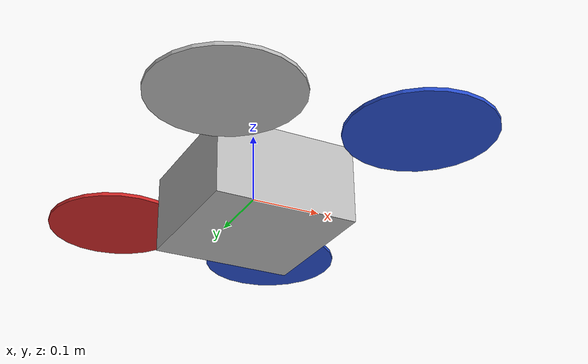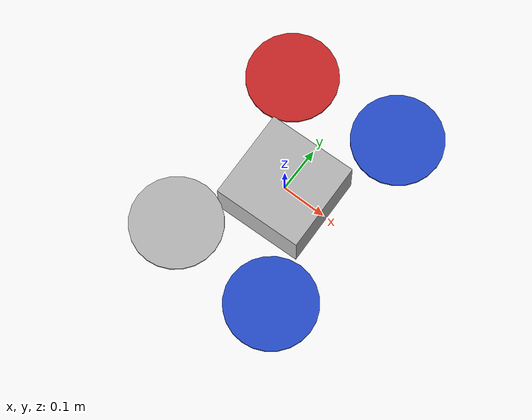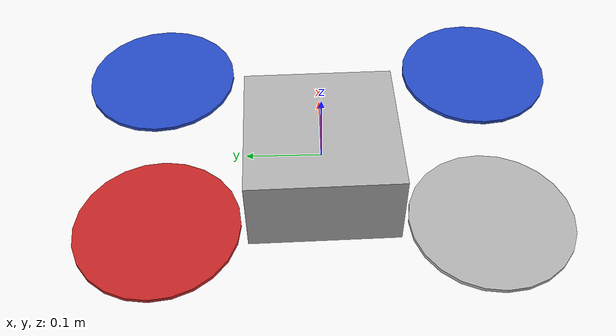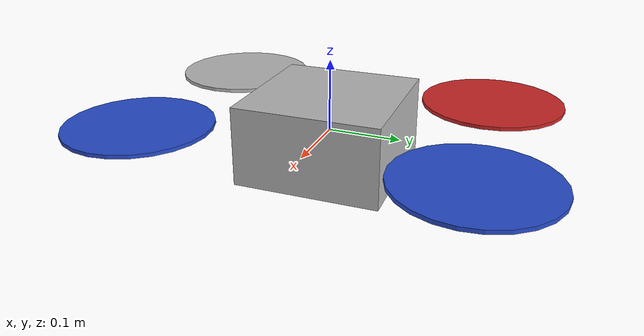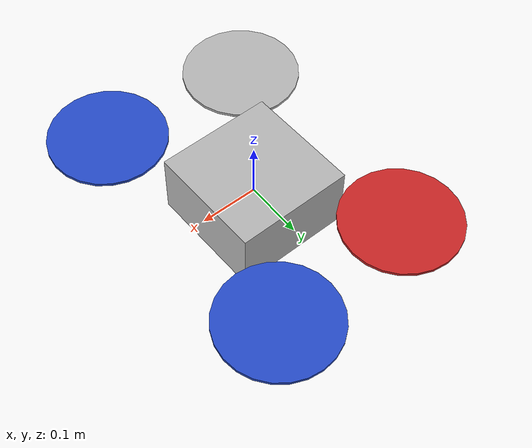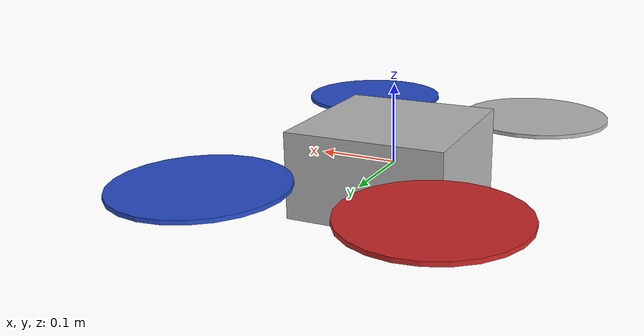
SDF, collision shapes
<?xml version="1.0" ?>
<sdf version='1.6'>
<model name="x3_uav">
    <link name='X3/base_link'>
      <pose>0 0 0 0 0 -3.12</pose>
      <inertial>
        <pose>0 0 0 0 0 0</pose>
        <mass>0.5</mass>
        <inertia>
          <ixx>0.0347563</ixx>
          <ixy>0</ixy >
          <ixz>0</ixz>
          <iyy>0.07</iyy>
          <iyz>0</iyz>
          <izz>0.0977</izz>
        </inertia>
      </inertial>
      <collision name='X3/base_link_inertia_collision'>
        <pose>0 0 0 0 -0 0</pose>
        <geometry>
          <box>
            <size>0.2 0.2 0.11</size>
          </box>
        </geometry>
      </collision>
    <sensor name="imu" type="imu">
      <always_on>1</always_on>
      <update_rate>100</update_rate>
      <visualize>true</visualize>
      <topic>imu</topic>
      <imu>
        <orientation_reference_frame>
          <localization>CUSTOM</localization>
          <custom_rpy parent_frame=''>0 0 0</custom_rpy>
        </orientation_reference_frame>
      </imu>
      <enable_metrics>true</enable_metrics>
    </sensor>
      <visual name='X3/base_link_inertia_visual'>
        <pose frame=''>0 0 0 0 -0 0</pose>
        <geometry>
          <mesh>
            <scale>1 1 1</scale>
            <uri>x3/meshes/x3.dae</uri>
          </mesh>
        </geometry>
      </visual>
      <sensor name="rgbd_camera" type="rgbd_camera">
        <pose>0 0 0 0 0 -3.12</pose>
        <update_rate>100</update_rate>
        <visualize>true</visualize>
        <always_on>1</always_on>
        <topic>Camera0</topic>
        <camera>
          <image>
            <width>600</width>
            <height>600</height>
            <format>L_INT8</format>
          </image>
          <clip>
            <near>0.1</near>
            <far>10</far>
          </clip>
          <scale_to_hfov>true</scale_to_hfov>
        </camera>
      </sensor>
    </link>
    <link name='X3/rotor_0'>
      <pose frame=''>0.13 -0.22 0.023 0 -0 0</pose>
      <inertial>
        <pose frame=''>0 0 0 0 -0 0</pose>
        <mass>0.005</mass>
        <inertia>
          <ixx>0.0001</ixx>
          <ixy>0</ixy>
          <ixz>0</ixz>
          <iyy>0.0001</iyy>
          <iyz>0</iyz>
          <izz>0.0001</izz>
        </inertia>
      </inertial>
      <collision name='X3/rotor_0_collision'>
        <pose frame=''>0 0 0 0 -0 0</pose>
        <geometry>
          <cylinder>
            <length>0.005</length>
            <radius>0.1</radius>
          </cylinder>
        </geometry>
      </collision>
      <visual name='X3/rotor_0_visual'>
        <pose frame=''>0 0 0 0 -0 0</pose>
        <geometry>
          <mesh>
            <scale>0.1 0.1 0.1</scale>
            <uri>x3/meshes/propeller_ccw.dae</uri>
          </mesh>
        </geometry>
        <material>
          <script>
            <name>Gazebo/Blue</name>
            <uri>file://media/materials/scripts/gazebo.material</uri>
          </script>
        </material>
      </visual>
    </link>
    <joint name='X3/rotor_0_joint' type='revolute'>
      <child>X3/rotor_0</child>
      <parent>X3/base_link</parent>
      <axis>
        <xyz>0 0 1</xyz>
        <limit>
          <lower>-1e+16</lower>
          <upper>1e+16</upper>
        </limit>
      </axis>
    </joint>
    <link name='X3/rotor_1'>
      <pose frame=''>-0.13 0.2 0.023 0 -0 0</pose>
      <inertial>
        <pose frame=''>0 0 0 0 -0 0</pose>
        <mass>0.005</mass>
        <inertia>
          <ixx>0.0001</ixx>
          <ixy>0</ixy>
          <ixz>0</ixz>
          <iyy>0.0001</iyy>
          <iyz>0</iyz>
          <izz>0.0001</izz>
        </inertia>
      </inertial>
      <collision name='X3/rotor_1_collision'>
        <pose frame=''>0 0 0 0 -0 0</pose>
        <geometry>
          <cylinder>
            <length>0.005</length>
            <radius>0.1</radius>
          </cylinder>
        </geometry>

      </collision>
      <visual name='X3/rotor_1_visual'>
        <pose frame=''>0 0 0 0 -0 0</pose>
        <geometry>
          <mesh>
            <scale>0.1 0.1 0.1</scale>
            <uri>x3/meshes/propeller_ccw.dae</uri>
          </mesh>
        </geometry>
        <material>
          <script>
            <name>Gazebo/Red</name>
            <uri>file://media/materials/scripts/gazebo.material</uri>
          </script>
        </material>
      </visual>
    </link>
    <joint name='X3/rotor_1_joint' type='revolute'>
      <child>X3/rotor_1</child>
      <parent>X3/base_link</parent>
      <axis>
        <xyz>0 0 1</xyz>
        <limit>
          <lower>-1e+16</lower>
          <upper>1e+16</upper>
        </limit>
      </axis>
    </joint>
    <link name='X3/rotor_2'>
      <pose frame=''>0.13 0.22 0.023 0 -0 0</pose>
      <inertial>
        <pose frame=''>0 0 0 0 -0 0</pose>
        <mass>0.005</mass>
        <inertia>
          <ixx>0.0001</ixx>
          <ixy>0</ixy>
          <ixz>0</ixz>
          <iyy>0.0001</iyy>
          <iyz>0</iyz>
          <izz>0.0001</izz>
        </inertia>
      </inertial>
      <collision name='X3/rotor_2_collision'>
        <pose frame=''>0 0 0 0 -0 0</pose>
        <geometry>
          <cylinder>
            <length>0.005</length>
            <radius>0.1</radius>
          </cylinder>
        </geometry>
      </collision>
      <visual name='X3/rotor_2_visual'>
        <pose frame=''>0 0 0 0 -0 0</pose>
        <geometry>
          <mesh>
            <scale>0.1 0.1 0.1</scale>
            <uri>x3/meshes/propeller_cw.dae</uri>
          </mesh>
        </geometry>
        <material>
          <script>
            <name>Gazebo/Blue</name>
            <uri>file://media/materials/scripts/gazebo.material</uri>
          </script>
        </material>
      </visual>
    </link>
    <joint name='X3/rotor_2_joint' type='revolute'>
      <child>X3/rotor_2</child>
      <parent>X3/base_link</parent>
      <axis>
        <xyz>0 0 1</xyz>
        <limit>
          <lower>-1e+16</lower>
          <upper>1e+16</upper>
        </limit>
      </axis>
    </joint>
    <link name='X3/rotor_3'>
      <pose frame=''>-0.13 -0.2 0.023 0 -0 0</pose>
      <inertial>
        <pose frame=''>0 0 0 0 -0 0</pose>
        <mass>0.005</mass>
        <inertia>
          <ixx>0.0001</ixx>
          <ixy>0</ixy>
          <ixz>0</ixz>
          <iyy>0.0001</iyy>
          <iyz>0</iyz>
          <izz>0.0001</izz>
        </inertia>
      </inertial>
      <collision name='X3/rotor_3_collision'>
        <pose frame=''>0 0 0 0 -0 0</pose>
        <geometry>
          <cylinder>
            <length>0.005</length>
            <radius>0.1</radius>
          </cylinder>
        </geometry>

      </collision>
      <visual name='X3/rotor_3_visual'>
        <pose frame=''>0 0 0 0 -0 0</pose>
        <geometry>
          <mesh>
            <scale>0.1 0.1 0.1</scale>
            <uri>x3/meshes/propeller_cw.dae</uri>
          </mesh>
        </geometry>
      </visual>
    </link>
      <joint name='X3/rotor_3_joint' type='revolute'>
      <child>X3/rotor_3</child>
      <parent>X3/base_link</parent>
      <axis>
        <xyz>0 0 1</xyz>
        <limit>
          <lower>-1e+16</lower>
          <upper>1e+16</upper>
        </limit>
      </axis>
      </joint>
      <plugin
        filename="ignition-gazebo-multicopter-motor-model-system"
        name="ignition::gazebo::systems::MulticopterMotorModel">
        <robotNamespace>x3_uav</robotNamespace>
        <jointName>X3/rotor_0_joint</jointName>
        <linkName>X3/rotor_0</linkName>
        <turningDirection>ccw</turningDirection>
        <timeConstantUp>0.0125</timeConstantUp>
        <timeConstantDown>0.025</timeConstantDown>
        <maxRotVelocity>800.0</maxRotVelocity>
        <motorConstant>8.54858e-06</motorConstant>
        <momentConstant>0.016</momentConstant>
        <commandSubTopic>gazebo/command/motor_speed</commandSubTopic>
        <motorNumber>0</motorNumber>
        <rotorDragCoefficient>8.06428e-05</rotorDragCoefficient>
        <rollingMomentCoefficient>1e-06</rollingMomentCoefficient>
        <motorSpeedPubTopic>motor_speed/0</motorSpeedPubTopic>
        <rotorVelocitySlowdownSim>10</rotorVelocitySlowdownSim>
        <motorType>velocity</motorType>
      </plugin>
      <plugin
        filename="ignition-gazebo-multicopter-motor-model-system"
        name="ignition::gazebo::systems::MulticopterMotorModel">
        <robotNamespace>x3_uav</robotNamespace>
        <jointName>X3/rotor_1_joint</jointName>
        <linkName>X3/rotor_1</linkName>
        <turningDirection>ccw</turningDirection>
        <timeConstantUp>0.0125</timeConstantUp>
        <timeConstantDown>0.025</timeConstantDown>
        <maxRotVelocity>800.0</maxRotVelocity>
        <motorConstant>8.54858e-06</motorConstant>
        <momentConstant>0.016</momentConstant>
        <commandSubTopic>gazebo/command/motor_speed</commandSubTopic>
        <motorNumber>1</motorNumber>
        <rotorDragCoefficient>8.06428e-05</rotorDragCoefficient>
        <rollingMomentCoefficient>1e-06</rollingMomentCoefficient>
        <motorSpeedPubTopic>motor_speed/1</motorSpeedPubTopic>
        <rotorVelocitySlowdownSim>10</rotorVelocitySlowdownSim>
        <motorType>velocity</motorType>
      </plugin>
      <plugin
        filename="ignition-gazebo-multicopter-motor-model-system"
        name="ignition::gazebo::systems::MulticopterMotorModel">
        <robotNamespace>x3_uav</robotNamespace>
        <jointName>X3/rotor_2_joint</jointName>
        <linkName>X3/rotor_2</linkName>
        <turningDirection>cw</turningDirection>
        <timeConstantUp>0.0125</timeConstantUp>
        <timeConstantDown>0.025</timeConstantDown>
        <maxRotVelocity>800.0</maxRotVelocity>
        <motorConstant>8.54858e-06</motorConstant>
        <momentConstant>0.016</momentConstant>
        <commandSubTopic>gazebo/command/motor_speed</commandSubTopic>
        <motorNumber>2</motorNumber>
        <rotorDragCoefficient>8.06428e-05</rotorDragCoefficient>
        <rollingMomentCoefficient>1e-06</rollingMomentCoefficient>
        <motorSpeedPubTopic>motor_speed/2</motorSpeedPubTopic>
        <rotorVelocitySlowdownSim>10</rotorVelocitySlowdownSim>
        <motorType>velocity</motorType>
      </plugin>
      <plugin
        filename="ignition-gazebo-multicopter-motor-model-system"
        name="ignition::gazebo::systems::MulticopterMotorModel">
        <robotNamespace>x3_uav</robotNamespace>
        <jointName>X3/rotor_3_joint</jointName>
        <linkName>X3/rotor_3</linkName>
        <turningDirection>cw</turningDirection>
        <timeConstantUp>0.0125</timeConstantUp>
        <timeConstantDown>0.025</timeConstantDown>
        <maxRotVelocity>800.0</maxRotVelocity>
        <motorConstant>8.54858e-06</motorConstant>
        <momentConstant>0.016</momentConstant>
        <commandSubTopic>gazebo/command/motor_speed</commandSubTopic>
        <motorNumber>3</motorNumber>
        <rotorDragCoefficient>8.06428e-05</rotorDragCoefficient>
        <rollingMomentCoefficient>1e-06</rollingMomentCoefficient>
        <motorSpeedPubTopic>motor_speed/3</motorSpeedPubTopic>
        <rotorVelocitySlowdownSim>10</rotorVelocitySlowdownSim>
        <motorType>velocity</motorType>
      </plugin>
      <plugin
        filename="ignition-gazebo-multicopter-control-system"
        name="ignition::gazebo::systems::MulticopterVelocityControl">
        <robotNamespace>x3_uav</robotNamespace>
        <commandSubTopic>gazebo/command/twist</commandSubTopic>
        <enableSubTopic>enable</enableSubTopic>
        <comLinkName>X3/base_link</comLinkName>
        <velocityGain>2.7 2.7 2.7</velocityGain>
        <attitudeGain>2 3 0.15</attitudeGain>
        <angularRateGain>0.4 0.52 0.18</angularRateGain>
        <maximumLinearAcceleration>2 2 2</maximumLinearAcceleration>

        <rotorConfiguration>
          <rotor>
            <jointName>X3/rotor_0_joint</jointName>
            <forceConstant>8.54858e-06</forceConstant>
            <momentConstant>0.016</momentConstant>
            <direction>1</direction>
          </rotor>
          <rotor>
            <jointName>X3/rotor_1_joint</jointName>
            <forceConstant>8.54858e-06</forceConstant>
            <momentConstant>0.016</momentConstant>
            <direction>1</direction>
          </rotor>
          <rotor>
            <jointName>X3/rotor_2_joint</jointName>
            <forceConstant>8.54858e-06</forceConstant>
            <momentConstant>0.016</momentConstant>
            <direction>-1</direction>
          </rotor>
          <rotor>
            <jointName>X3/rotor_3_joint</jointName>
            <forceConstant>8.54858e-06</forceConstant>
            <momentConstant>0.016</momentConstant>
            <direction>-1</direction>
          </rotor>
        </rotorConfiguration>
      </plugin>

    <plugin
      filename="ignition-gazebo-sensors-system"
      name="ignition::gazebo::systems::Sensors">
      <render_engine>ogre2</render_engine>
  </plugin>

  </model>
</sdf>
